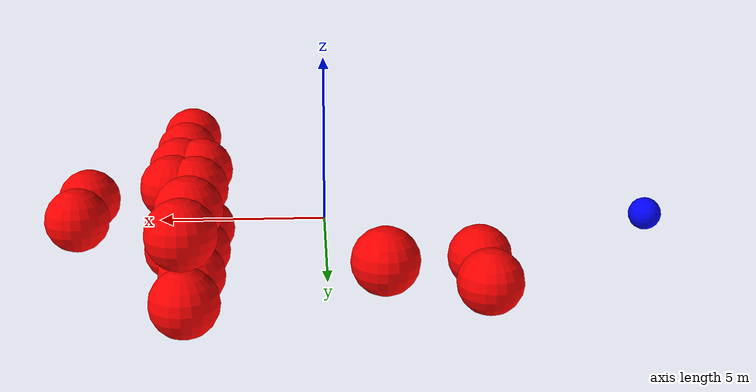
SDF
<sdf version="1.8">
 <world name="3d_world">
  <model name="agente" canonical_link="chassis">
   <pose relative_to="world">-10.0 0 0.0 0 0 0</pose>
   <link name="chassis">
    <pose relative_to="__model__">0.0 0 0.0 0 0 0</pose>
    <inertial>
     <mass>1.14395</mass>
     <inertia>
      <ixx>0.095329</ixx>
      <ixy>0</ixy>
      <ixz>0</ixz>
      <iyy>0.381317</iyy>
      <iyz>0</iyz>
      <izz>0.476646</izz>
     </inertia>
    </inertial>
    <visual name="visual">
     <geometry><sphere><radius>0.5</radius></sphere></geometry>
     <material>
      <ambient>0.0 0.0 1.0 1</ambient>
      <diffuse>0.0 0.0 1.0 1</diffuse>
      <specular>0.0 0.0 1.0 1</specular>
     </material>
    </visual>
    <collision name="collision">
     <geometry><sphere><radius>0.5</radius><sphere><radius>0.5</radius></sphere></sphere></geometry>
    </collision>
    <enable_gravity>false</enable_gravity>
   </link>
   <link name="lidar_link">
    <pose relative_to="chassis">0.0 0 0.1 0 0 0</pose>
    <inertial>
     <mass>0.1</mass>
     <inertia><ixx>0.000166667</ixx><iyy>0.000166667</iyy><izz>0.000166667</izz></inertia>
    </inertial>
    <collision name="collision">
     <geometry><cylinder><radius>0.05</radius><length>0.1</length></cylinder></geometry>
    </collision>
    <visual name="visual">
     <geometry><cylinder><radius>0.05</radius><length>0.1</length></cylinder></geometry>
     <material>
      <ambient>0.0 1.0 0.0 1</ambient>
      <diffuse>0.0 1.0 0.0 1</diffuse>
      <specular>0.0 1.0 0.0 1</specular>
     </material>
    </visual>
    <sensor name="lidar" type="gpu_lidar">
     <topic>scan</topic>
     <update_rate>10</update_rate>
     <lidar>
      <scan>
       <horizontal>
        <samples>5000</samples>
        <resolution>1</resolution>
        <min_angle>-3.14159</min_angle>
        <max_angle>3.14159</max_angle>
       </horizontal>
      </scan>
      <range><min>0.1</min><max>10.0</max><resolution>0.01</resolution></range>
     </lidar>
     <visualize>true</visualize>
     <always_on>true</always_on>
     <update_rate>10</update_rate>
     <pose_frame>lidar</pose_frame>
    </sensor>
    <enable_gravity>false</enable_gravity>
   </link>
   <joint name="lidar_joint" type="fixed"><parent>chassis</parent><child>lidar_link</child></joint>
   <plugin filename="ignition-gazebo-joint-state-publisher-system" name="ignition::gazebo::systems::JointStatePublisher"/>
   <plugin filename="ignition-gazebo-odometry-publisher-system" name="ignition::gazebo::systems::OdometryPublisher">
    <dimensions>3</dimensions>
   </plugin>
   <plugin filename="ignition-gazebo-velocity-control-system" name="ignition::gazebo::systems::VelocityControl">
    <initial_linear>0.0 0 0</initial_linear>
    <initial_angular>0 0 0.0</initial_angular>
   </plugin>
   <plugin filename="libignition-gazebo-pose-publisher-system.so" name="ignition::gazebo::systems::PosePublisher">
    <topic>/agente/pose</topic>
    <frame_id>agente</frame_id>
    <update_rate>30</update_rate>
   </plugin>
  </model>
  <model name="obstacle_1" canonical_link="obstacle">
   <static>true</static>
   <pose relative_to="world">4.60 -6.14 -1.00 0 0 0</pose>
   <link name="obstacle">
    <pose relative_to="__model__">0.0 0 0.0 0 0 0</pose>
    <visual name="visual">
     <geometry><sphere><radius>1.00</radius></sphere></geometry>
     <material>
      <ambient>1.0 0.0 0.0 1</ambient>
      <diffuse>1.0 0.0 0.0 1</diffuse>
      <specular>1.0 0.0 0.0 1</specular>
     </material>
    </visual>
    <collision name="collision"><geometry><sphere><radius>1.00</radius></sphere></geometry></collision>
    <enable_gravity>false</enable_gravity>
   </link>
   <plugin filename="ignition-gazebo-velocity-control-system" name="ignition::gazebo::systems::VelocityControl">
    <initial_linear>0.00 0.00 0.00</initial_linear>
    <initial_angular>0 0 0</initial_angular>
   </plugin>
   <plugin filename="ignition-gazebo-odometry-publisher-system" name="ignition::gazebo::systems::OdometryPublisher">
    <dimensions>3</dimensions>
   </plugin>
  </model>
  <model name="obstacle_2" canonical_link="obstacle">
   <static>true</static>
   <pose relative_to="world">4.60 -4.14 -1.00 0 0 0</pose>
   <link name="obstacle">
    <pose relative_to="__model__">0.0 0 0.0 0 0 0</pose>
    <visual name="visual">
     <geometry><sphere><radius>1.00</radius></sphere></geometry>
     <material>
      <ambient>1.0 0.0 0.0 1</ambient>
      <diffuse>1.0 0.0 0.0 1</diffuse>
      <specular>1.0 0.0 0.0 1</specular>
     </material>
    </visual>
    <collision name="collision"><geometry><sphere><radius>1.00</radius></sphere></geometry></collision>
    <enable_gravity>false</enable_gravity>
   </link>
   <plugin filename="ignition-gazebo-velocity-control-system" name="ignition::gazebo::systems::VelocityControl">
    <initial_linear>0.00 0.00 0.00</initial_linear>
    <initial_angular>0 0 0</initial_angular>
   </plugin>
   <plugin filename="ignition-gazebo-odometry-publisher-system" name="ignition::gazebo::systems::OdometryPublisher">
    <dimensions>3</dimensions>
   </plugin>
  </model>
  <model name="obstacle_3" canonical_link="obstacle">
   <static>true</static>
   <pose relative_to="world">4.60 -2.14 -1.00 0 0 0</pose>
   <link name="obstacle">
    <pose relative_to="__model__">0.0 0 0.0 0 0 0</pose>
    <visual name="visual">
     <geometry><sphere><radius>1.00</radius></sphere></geometry>
     <material>
      <ambient>1.0 0.0 0.0 1</ambient>
      <diffuse>1.0 0.0 0.0 1</diffuse>
      <specular>1.0 0.0 0.0 1</specular>
     </material>
    </visual>
    <collision name="collision"><geometry><sphere><radius>1.00</radius></sphere></geometry></collision>
    <enable_gravity>false</enable_gravity>
   </link>
   <plugin filename="ignition-gazebo-velocity-control-system" name="ignition::gazebo::systems::VelocityControl">
    <initial_linear>0.00 0.00 0.00</initial_linear>
    <initial_angular>0 0 0</initial_angular>
   </plugin>
   <plugin filename="ignition-gazebo-odometry-publisher-system" name="ignition::gazebo::systems::OdometryPublisher">
    <dimensions>3</dimensions>
   </plugin>
  </model>
  <model name="obstacle_4" canonical_link="obstacle">
   <static>true</static>
   <pose relative_to="world">4.60 -0.14 -1.00 0 0 0</pose>
   <link name="obstacle">
    <pose relative_to="__model__">0.0 0 0.0 0 0 0</pose>
    <visual name="visual">
     <geometry><sphere><radius>1.00</radius></sphere></geometry>
     <material>
      <ambient>1.0 0.0 0.0 1</ambient>
      <diffuse>1.0 0.0 0.0 1</diffuse>
      <specular>1.0 0.0 0.0 1</specular>
     </material>
    </visual>
    <collision name="collision"><geometry><sphere><radius>1.00</radius></sphere></geometry></collision>
    <enable_gravity>false</enable_gravity>
   </link>
   <plugin filename="ignition-gazebo-velocity-control-system" name="ignition::gazebo::systems::VelocityControl">
    <initial_linear>0.00 0.00 0.00</initial_linear>
    <initial_angular>0 0 0</initial_angular>
   </plugin>
   <plugin filename="ignition-gazebo-odometry-publisher-system" name="ignition::gazebo::systems::OdometryPublisher">
    <dimensions>3</dimensions>
   </plugin>
  </model>
  <model name="obstacle_5" canonical_link="obstacle">
   <static>true</static>
   <pose relative_to="world">4.60 -6.14 1.00 0 0 0</pose>
   <link name="obstacle">
    <pose relative_to="__model__">0.0 0 0.0 0 0 0</pose>
    <visual name="visual">
     <geometry><sphere><radius>1.00</radius></sphere></geometry>
     <material>
      <ambient>1.0 0.0 0.0 1</ambient>
      <diffuse>1.0 0.0 0.0 1</diffuse>
      <specular>1.0 0.0 0.0 1</specular>
     </material>
    </visual>
    <collision name="collision"><geometry><sphere><radius>1.00</radius></sphere></geometry></collision>
    <enable_gravity>false</enable_gravity>
   </link>
   <plugin filename="ignition-gazebo-velocity-control-system" name="ignition::gazebo::systems::VelocityControl">
    <initial_linear>0.00 0.00 0.00</initial_linear>
    <initial_angular>0 0 0</initial_angular>
   </plugin>
   <plugin filename="ignition-gazebo-odometry-publisher-system" name="ignition::gazebo::systems::OdometryPublisher">
    <dimensions>3</dimensions>
   </plugin>
  </model>
  <model name="obstacle_6" canonical_link="obstacle">
   <static>true</static>
   <pose relative_to="world">4.60 -4.14 1.00 0 0 0</pose>
   <link name="obstacle">
    <pose relative_to="__model__">0.0 0 0.0 0 0 0</pose>
    <visual name="visual">
     <geometry><sphere><radius>1.00</radius></sphere></geometry>
     <material>
      <ambient>1.0 0.0 0.0 1</ambient>
      <diffuse>1.0 0.0 0.0 1</diffuse>
      <specular>1.0 0.0 0.0 1</specular>
     </material>
    </visual>
    <collision name="collision"><geometry><sphere><radius>1.00</radius></sphere></geometry></collision>
    <enable_gravity>false</enable_gravity>
   </link>
   <plugin filename="ignition-gazebo-velocity-control-system" name="ignition::gazebo::systems::VelocityControl">
    <initial_linear>0.00 0.00 0.00</initial_linear>
    <initial_angular>0 0 0</initial_angular>
   </plugin>
   <plugin filename="ignition-gazebo-odometry-publisher-system" name="ignition::gazebo::systems::OdometryPublisher">
    <dimensions>3</dimensions>
   </plugin>
  </model>
  <model name="obstacle_7" canonical_link="obstacle">
   <static>true</static>
   <pose relative_to="world">4.60 -2.14 1.00 0 0 0</pose>
   <link name="obstacle">
    <pose relative_to="__model__">0.0 0 0.0 0 0 0</pose>
    <visual name="visual">
     <geometry><sphere><radius>1.00</radius></sphere></geometry>
     <material>
      <ambient>1.0 0.0 0.0 1</ambient>
      <diffuse>1.0 0.0 0.0 1</diffuse>
      <specular>1.0 0.0 0.0 1</specular>
     </material>
    </visual>
    <collision name="collision"><geometry><sphere><radius>1.00</radius></sphere></geometry></collision>
    <enable_gravity>false</enable_gravity>
   </link>
   <plugin filename="ignition-gazebo-velocity-control-system" name="ignition::gazebo::systems::VelocityControl">
    <initial_linear>0.00 0.00 0.00</initial_linear>
    <initial_angular>0 0 0</initial_angular>
   </plugin>
   <plugin filename="ignition-gazebo-odometry-publisher-system" name="ignition::gazebo::systems::OdometryPublisher">
    <dimensions>3</dimensions>
   </plugin>
  </model>
  <model name="obstacle_8" canonical_link="obstacle">
   <static>true</static>
   <pose relative_to="world">4.60 -0.14 1.00 0 0 0</pose>
   <link name="obstacle">
    <pose relative_to="__model__">0.0 0 0.0 0 0 0</pose>
    <visual name="visual">
     <geometry><sphere><radius>1.00</radius></sphere></geometry>
     <material>
      <ambient>1.0 0.0 0.0 1</ambient>
      <diffuse>1.0 0.0 0.0 1</diffuse>
      <specular>1.0 0.0 0.0 1</specular>
     </material>
    </visual>
    <collision name="collision"><geometry><sphere><radius>1.00</radius></sphere></geometry></collision>
    <enable_gravity>false</enable_gravity>
   </link>
   <plugin filename="ignition-gazebo-velocity-control-system" name="ignition::gazebo::systems::VelocityControl">
    <initial_linear>0.00 0.00 0.00</initial_linear>
    <initial_angular>0 0 0</initial_angular>
   </plugin>
   <plugin filename="ignition-gazebo-odometry-publisher-system" name="ignition::gazebo::systems::OdometryPublisher">
    <dimensions>3</dimensions>
   </plugin>
  </model>
  <model name="obstacle_9" canonical_link="obstacle">
   <static>true</static>
   <pose relative_to="world">3.91 -2.01 -1.00 0 0 0</pose>
   <link name="obstacle">
    <pose relative_to="__model__">0.0 0 0.0 0 0 0</pose>
    <visual name="visual">
     <geometry><sphere><radius>1.00</radius></sphere></geometry>
     <material>
      <ambient>1.0 0.0 0.0 1</ambient>
      <diffuse>1.0 0.0 0.0 1</diffuse>
      <specular>1.0 0.0 0.0 1</specular>
     </material>
    </visual>
    <collision name="collision"><geometry><sphere><radius>1.00</radius></sphere></geometry></collision>
    <enable_gravity>false</enable_gravity>
   </link>
   <plugin filename="ignition-gazebo-velocity-control-system" name="ignition::gazebo::systems::VelocityControl">
    <initial_linear>0.00 0.00 0.00</initial_linear>
    <initial_angular>0 0 0</initial_angular>
   </plugin>
   <plugin filename="ignition-gazebo-odometry-publisher-system" name="ignition::gazebo::systems::OdometryPublisher">
    <dimensions>3</dimensions>
   </plugin>
  </model>
  <model name="obstacle_10" canonical_link="obstacle">
   <static>true</static>
   <pose relative_to="world">3.91 -0.01 -1.00 0 0 0</pose>
   <link name="obstacle">
    <pose relative_to="__model__">0.0 0 0.0 0 0 0</pose>
    <visual name="visual">
     <geometry><sphere><radius>1.00</radius></sphere></geometry>
     <material>
      <ambient>1.0 0.0 0.0 1</ambient>
      <diffuse>1.0 0.0 0.0 1</diffuse>
      <specular>1.0 0.0 0.0 1</specular>
     </material>
    </visual>
    <collision name="collision"><geometry><sphere><radius>1.00</radius></sphere></geometry></collision>
    <enable_gravity>false</enable_gravity>
   </link>
   <plugin filename="ignition-gazebo-velocity-control-system" name="ignition::gazebo::systems::VelocityControl">
    <initial_linear>0.00 0.00 0.00</initial_linear>
    <initial_angular>0 0 0</initial_angular>
   </plugin>
   <plugin filename="ignition-gazebo-odometry-publisher-system" name="ignition::gazebo::systems::OdometryPublisher">
    <dimensions>3</dimensions>
   </plugin>
  </model>
  <model name="obstacle_11" canonical_link="obstacle">
   <static>true</static>
   <pose relative_to="world">3.91 1.99 -1.00 0 0 0</pose>
   <link name="obstacle">
    <pose relative_to="__model__">0.0 0 0.0 0 0 0</pose>
    <visual name="visual">
     <geometry><sphere><radius>1.00</radius></sphere></geometry>
     <material>
      <ambient>1.0 0.0 0.0 1</ambient>
      <diffuse>1.0 0.0 0.0 1</diffuse>
      <specular>1.0 0.0 0.0 1</specular>
     </material>
    </visual>
    <collision name="collision"><geometry><sphere><radius>1.00</radius></sphere></geometry></collision>
    <enable_gravity>false</enable_gravity>
   </link>
   <plugin filename="ignition-gazebo-velocity-control-system" name="ignition::gazebo::systems::VelocityControl">
    <initial_linear>0.00 0.00 0.00</initial_linear>
    <initial_angular>0 0 0</initial_angular>
   </plugin>
   <plugin filename="ignition-gazebo-odometry-publisher-system" name="ignition::gazebo::systems::OdometryPublisher">
    <dimensions>3</dimensions>
   </plugin>
  </model>
  <model name="obstacle_12" canonical_link="obstacle">
   <static>true</static>
   <pose relative_to="world">3.91 3.99 -1.00 0 0 0</pose>
   <link name="obstacle">
    <pose relative_to="__model__">0.0 0 0.0 0 0 0</pose>
    <visual name="visual">
     <geometry><sphere><radius>1.00</radius></sphere></geometry>
     <material>
      <ambient>1.0 0.0 0.0 1</ambient>
      <diffuse>1.0 0.0 0.0 1</diffuse>
      <specular>1.0 0.0 0.0 1</specular>
     </material>
    </visual>
    <collision name="collision"><geometry><sphere><radius>1.00</radius></sphere></geometry></collision>
    <enable_gravity>false</enable_gravity>
   </link>
   <plugin filename="ignition-gazebo-velocity-control-system" name="ignition::gazebo::systems::VelocityControl">
    <initial_linear>0.00 0.00 0.00</initial_linear>
    <initial_angular>0 0 0</initial_angular>
   </plugin>
   <plugin filename="ignition-gazebo-odometry-publisher-system" name="ignition::gazebo::systems::OdometryPublisher">
    <dimensions>3</dimensions>
   </plugin>
  </model>
  <model name="obstacle_13" canonical_link="obstacle">
   <static>true</static>
   <pose relative_to="world">3.91 -2.01 1.00 0 0 0</pose>
   <link name="obstacle">
    <pose relative_to="__model__">0.0 0 0.0 0 0 0</pose>
    <visual name="visual">
     <geometry><sphere><radius>1.00</radius></sphere></geometry>
     <material>
      <ambient>1.0 0.0 0.0 1</ambient>
      <diffuse>1.0 0.0 0.0 1</diffuse>
      <specular>1.0 0.0 0.0 1</specular>
     </material>
    </visual>
    <collision name="collision"><geometry><sphere><radius>1.00</radius></sphere></geometry></collision>
    <enable_gravity>false</enable_gravity>
   </link>
   <plugin filename="ignition-gazebo-velocity-control-system" name="ignition::gazebo::systems::VelocityControl">
    <initial_linear>0.00 0.00 0.00</initial_linear>
    <initial_angular>0 0 0</initial_angular>
   </plugin>
   <plugin filename="ignition-gazebo-odometry-publisher-system" name="ignition::gazebo::systems::OdometryPublisher">
    <dimensions>3</dimensions>
   </plugin>
  </model>
  <model name="obstacle_14" canonical_link="obstacle">
   <static>true</static>
   <pose relative_to="world">3.91 -0.01 1.00 0 0 0</pose>
   <link name="obstacle">
    <pose relative_to="__model__">0.0 0 0.0 0 0 0</pose>
    <visual name="visual">
     <geometry><sphere><radius>1.00</radius></sphere></geometry>
     <material>
      <ambient>1.0 0.0 0.0 1</ambient>
      <diffuse>1.0 0.0 0.0 1</diffuse>
      <specular>1.0 0.0 0.0 1</specular>
     </material>
    </visual>
    <collision name="collision"><geometry><sphere><radius>1.00</radius></sphere></geometry></collision>
    <enable_gravity>false</enable_gravity>
   </link>
   <plugin filename="ignition-gazebo-velocity-control-system" name="ignition::gazebo::systems::VelocityControl">
    <initial_linear>0.00 0.00 0.00</initial_linear>
    <initial_angular>0 0 0</initial_angular>
   </plugin>
   <plugin filename="ignition-gazebo-odometry-publisher-system" name="ignition::gazebo::systems::OdometryPublisher">
    <dimensions>3</dimensions>
   </plugin>
  </model>
  <model name="obstacle_15" canonical_link="obstacle">
   <static>true</static>
   <pose relative_to="world">3.91 1.99 1.00 0 0 0</pose>
   <link name="obstacle">
    <pose relative_to="__model__">0.0 0 0.0 0 0 0</pose>
    <visual name="visual">
     <geometry><sphere><radius>1.00</radius></sphere></geometry>
     <material>
      <ambient>1.0 0.0 0.0 1</ambient>
      <diffuse>1.0 0.0 0.0 1</diffuse>
      <specular>1.0 0.0 0.0 1</specular>
     </material>
    </visual>
    <collision name="collision"><geometry><sphere><radius>1.00</radius></sphere></geometry></collision>
    <enable_gravity>false</enable_gravity>
   </link>
   <plugin filename="ignition-gazebo-velocity-control-system" name="ignition::gazebo::systems::VelocityControl">
    <initial_linear>0.00 0.00 0.00</initial_linear>
    <initial_angular>0 0 0</initial_angular>
   </plugin>
   <plugin filename="ignition-gazebo-odometry-publisher-system" name="ignition::gazebo::systems::OdometryPublisher">
    <dimensions>3</dimensions>
   </plugin>
  </model>
  <model name="obstacle_16" canonical_link="obstacle">
   <static>true</static>
   <pose relative_to="world">3.91 3.99 1.00 0 0 0</pose>
   <link name="obstacle">
    <pose relative_to="__model__">0.0 0 0.0 0 0 0</pose>
    <visual name="visual">
     <geometry><sphere><radius>1.00</radius></sphere></geometry>
     <material>
      <ambient>1.0 0.0 0.0 1</ambient>
      <diffuse>1.0 0.0 0.0 1</diffuse>
      <specular>1.0 0.0 0.0 1</specular>
     </material>
    </visual>
    <collision name="collision"><geometry><sphere><radius>1.00</radius></sphere></geometry></collision>
    <enable_gravity>false</enable_gravity>
   </link>
   <plugin filename="ignition-gazebo-velocity-control-system" name="ignition::gazebo::systems::VelocityControl">
    <initial_linear>0.00 0.00 0.00</initial_linear>
    <initial_angular>0 0 0</initial_angular>
   </plugin>
   <plugin filename="ignition-gazebo-odometry-publisher-system" name="ignition::gazebo::systems::OdometryPublisher">
    <dimensions>3</dimensions>
   </plugin>
  </model>
  <model name="obstacle_17" canonical_link="obstacle">
   <static>false</static>
   <pose relative_to="world">-1.67 3.09 -0.21 0 0 0</pose>
   <link name="obstacle">
    <pose relative_to="__model__">0.0 0 0.0 0 0 0</pose>
    <visual name="visual">
     <geometry><sphere><radius>1.00</radius></sphere></geometry>
     <material>
      <ambient>1.0 0.0 0.0 1</ambient>
      <diffuse>1.0 0.0 0.0 1</diffuse>
      <specular>1.0 0.0 0.0 1</specular>
     </material>
    </visual>
    <collision name="collision"><geometry><sphere><radius>1.00</radius></sphere></geometry></collision>
    <enable_gravity>false</enable_gravity>
   </link>
   <plugin filename="ignition-gazebo-velocity-control-system" name="ignition::gazebo::systems::VelocityControl">
    <initial_linear>0.00 -1.66 0.07</initial_linear>
    <initial_angular>0 0 0</initial_angular>
   </plugin>
   <plugin filename="ignition-gazebo-odometry-publisher-system" name="ignition::gazebo::systems::OdometryPublisher">
    <dimensions>3</dimensions>
   </plugin>
  </model>
  <model name="obstacle_18" canonical_link="obstacle">
   <static>false</static>
   <pose relative_to="world">7.70 -2.64 -0.19 0 0 0</pose>
   <link name="obstacle">
    <pose relative_to="__model__">0.0 0 0.0 0 0 0</pose>
    <visual name="visual">
     <geometry><sphere><radius>1.00</radius></sphere></geometry>
     <material>
      <ambient>1.0 0.0 0.0 1</ambient>
      <diffuse>1.0 0.0 0.0 1</diffuse>
      <specular>1.0 0.0 0.0 1</specular>
     </material>
    </visual>
    <collision name="collision"><geometry><sphere><radius>1.00</radius></sphere></geometry></collision>
    <enable_gravity>false</enable_gravity>
   </link>
   <plugin filename="ignition-gazebo-velocity-control-system" name="ignition::gazebo::systems::VelocityControl">
    <initial_linear>0.00 1.81 0.15</initial_linear>
    <initial_angular>0 0 0</initial_angular>
   </plugin>
   <plugin filename="ignition-gazebo-odometry-publisher-system" name="ignition::gazebo::systems::OdometryPublisher">
    <dimensions>3</dimensions>
   </plugin>
  </model>
  <model name="obstacle_19" canonical_link="obstacle">
   <static>false</static>
   <pose relative_to="world">7.70 -0.64 -0.19 0 0 0</pose>
   <link name="obstacle">
    <pose relative_to="__model__">0.0 0 0.0 0 0 0</pose>
    <visual name="visual">
     <geometry><sphere><radius>1.00</radius></sphere></geometry>
     <material>
      <ambient>1.0 0.0 0.0 1</ambient>
      <diffuse>1.0 0.0 0.0 1</diffuse>
      <specular>1.0 0.0 0.0 1</specular>
     </material>
    </visual>
    <collision name="collision"><geometry><sphere><radius>1.00</radius></sphere></geometry></collision>
    <enable_gravity>false</enable_gravity>
   </link>
   <plugin filename="ignition-gazebo-velocity-control-system" name="ignition::gazebo::systems::VelocityControl">
    <initial_linear>0.00 1.81 0.15</initial_linear>
    <initial_angular>0 0 0</initial_angular>
   </plugin>
   <plugin filename="ignition-gazebo-odometry-publisher-system" name="ignition::gazebo::systems::OdometryPublisher">
    <dimensions>3</dimensions>
   </plugin>
  </model>
  <model name="obstacle_20" canonical_link="obstacle">
   <static>false</static>
   <pose relative_to="world">-4.80 0.42 -1.18 0 0 0</pose>
   <link name="obstacle">
    <pose relative_to="__model__">0.0 0 0.0 0 0 0</pose>
    <visual name="visual">
     <geometry><sphere><radius>1.00</radius></sphere></geometry>
     <material>
      <ambient>1.0 0.0 0.0 1</ambient>
      <diffuse>1.0 0.0 0.0 1</diffuse>
      <specular>1.0 0.0 0.0 1</specular>
     </material>
    </visual>
    <collision name="collision"><geometry><sphere><radius>1.00</radius></sphere></geometry></collision>
    <enable_gravity>false</enable_gravity>
   </link>
   <plugin filename="ignition-gazebo-velocity-control-system" name="ignition::gazebo::systems::VelocityControl">
    <initial_linear>0.00 -1.05 0.87</initial_linear>
    <initial_angular>0 0 0</initial_angular>
   </plugin>
   <plugin filename="ignition-gazebo-odometry-publisher-system" name="ignition::gazebo::systems::OdometryPublisher">
    <dimensions>3</dimensions>
   </plugin>
  </model>
  <model name="obstacle_21" canonical_link="obstacle">
   <static>false</static>
   <pose relative_to="world">-4.80 2.42 -1.18 0 0 0</pose>
   <link name="obstacle">
    <pose relative_to="__model__">0.0 0 0.0 0 0 0</pose>
    <visual name="visual">
     <geometry><sphere><radius>1.00</radius></sphere></geometry>
     <material>
      <ambient>1.0 0.0 0.0 1</ambient>
      <diffuse>1.0 0.0 0.0 1</diffuse>
      <specular>1.0 0.0 0.0 1</specular>
     </material>
    </visual>
    <collision name="collision"><geometry><sphere><radius>1.00</radius></sphere></geometry></collision>
    <enable_gravity>false</enable_gravity>
   </link>
   <plugin filename="ignition-gazebo-velocity-control-system" name="ignition::gazebo::systems::VelocityControl">
    <initial_linear>0.00 -1.05 0.87</initial_linear>
    <initial_angular>0 0 0</initial_angular>
   </plugin>
   <plugin filename="ignition-gazebo-odometry-publisher-system" name="ignition::gazebo::systems::OdometryPublisher">
    <dimensions>3</dimensions>
   </plugin>
  </model>
 </world>
</sdf>
